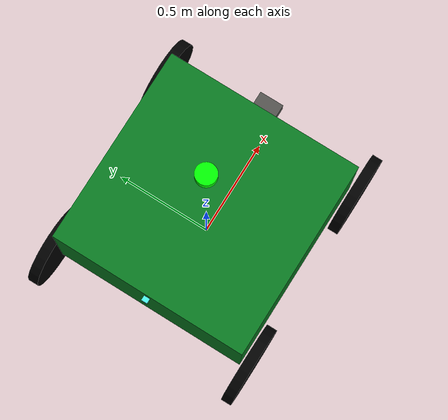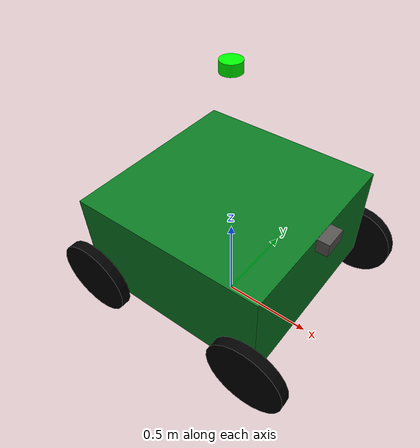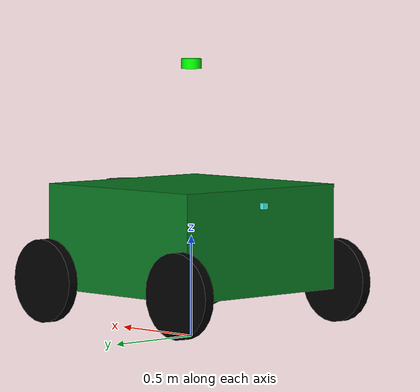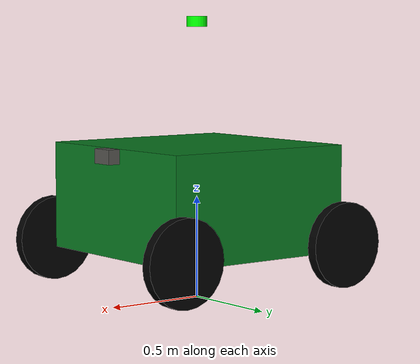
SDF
<?xml version="1.0"?>
<sdf version="1.8">
  <model name="Fun_Robot" canonical_link="base_footprint">
    <static>false</static>
    <pose>0 0 0 0 0 0</pose>

    <!-- Base footprint (frame only) -->
    <link name="base_footprint"/>

    <!-- Base link -->
    <link name="base_link">
      <pose relative_to="base_footprint">0 0 0.5 0 0 0</pose>

      <visual name="base_link_visual">
        <pose>0 0 0 0 0 0</pose>
        <geometry>
          <box>
            <!-- updated size (match provided text) -->
            <size>1 1 0.5232328098292442</size>
          </box>
        </geometry>
        <material>
          <ambient>0.033104766565152086 0.46778379610254284 0.12477181755144427 1</ambient>
          <diffuse>0.033104766565152086 0.46778379610254284 0.12477181755144427 1</diffuse>
          <specular>0.1 0.1 0.1 1</specular>
          <emissive>0 0 0 1</emissive>
        </material>
      </visual>

      <collision name="base_link_collision">
        <pose>0 0 0 0 0 0</pose>
        <geometry>
          <box>
            <size>1 1 0.5232328098292442</size>
          </box>
        </geometry>
      </collision>

      <inertial>
        <mass>1</mass>
        <inertia>
          <ixx>0.16666666666666666</ixx>
          <ixy>0</ixy>
          <ixz>0</ixz>
          <iyy>0.16666666666666666</iyy>
          <iyz>0</iyz>
          <izz>0.16666666666666666</izz>
        </inertia>
      </inertial>
    </link>

    <joint name="base_footprint_to_base_link" type="fixed">
      <pose relative_to="base_link">0 0 0 0 0 0</pose>
      <parent>base_footprint</parent>
      <child>base_link</child>
    </joint>

    <!-- LIDAR link + sensor (no ROS plugin; Gazebo Sim sensor only) -->
    <link name="lidar3d_link">
      <!-- position of the lidar on the robot -->
      <pose relative_to="base_link">0 0 0.8569669071788341 0 0 0</pose>

      <!-- small inertial so physics is happy -->
      <inertial>
        <mass>0.5</mass>
        <inertia>
          <ixx>0.001</ixx><ixy>0.0</ixy><ixz>0.0</ixz>
          <iyy>0.001</iyy><iyz>0.0</iyz>
          <izz>0.001</izz>
        </inertia>
      </inertial>

      <!-- simple collision + visual -->
      <collision name="collision">
        <geometry>
          <cylinder>
            <radius>0.05</radius>
            <length>0.05</length>
          </cylinder>
        </geometry>
      </collision>

      <visual name="visual">
        <geometry>
          <cylinder>
            <radius>0.05</radius>
            <length>0.05</length>
          </cylinder>
        </geometry>
        <material>
          <ambient>0.0 1.0 0.0 1</ambient>
          <diffuse>0.0 1.0 0.0 1</diffuse>
        </material>
      </visual>

      <!-- 3D GPU lidar sensor -->
      <sensor name="lidar3d" type="gpu_lidar">
        <pose>0 0 0 0 0 0</pose>
        <update_rate>10</update_rate>
        <always_on>true</always_on>

        <lidar>
          <scan>
            <horizontal>
              <samples>720</samples>
              <resolution>1</resolution>
              <min_angle>-3.14159</min_angle>
              <max_angle>3.14159</max_angle>
            </horizontal>
            <vertical>
              <samples>16</samples>
              <resolution>1</resolution>
              <min_angle>-0.523599</min_angle>
              <max_angle>0.523599</max_angle>
            </vertical>
          </scan>

          <range>
            <min>0.1</min>
            <max>20.0</max>
            <resolution>0.01</resolution>
          </range>
        </lidar>

        <!-- Gazebo topic it publishes; keep this exact name -->
        <topic>/lidar3d/points</topic>
      </sensor>
    </link>

    <joint name="base_link_to_lidar" type="fixed">
      <pose relative_to="lidar3d_link">0 0 0 0 0 0</pose>
      <parent>base_link</parent>
      <child>lidar3d_link</child>
    </joint>

    <!-- Right front wheel -->
    <link name="wheel_right">
      <!-- updated wheel_right pose (xyz and rpy) -->
      <pose relative_to="base_link">0.485 0.5371496664052635 -0.2208471930668996 1.5707963267948963 0 0</pose>

      <visual name="wheel_right_visual">
        <pose>0 0 0 0 0 0</pose>
        <geometry>
          <cylinder>
            <!-- updated wheel radius -->
            <radius>0.208</radius>
            <length>0.05383527298985801</length>
          </cylinder>
        </geometry>
        <material>
          <!-- updated wheel color to black -->
          <ambient>0 0 0 1</ambient>
          <diffuse>0 0 0 1</diffuse>
          <specular>0.1 0.1 0.1 1</specular>
          <emissive>0 0 0 1</emissive>
        </material>
      </visual>

      <collision name="wheel_right_collision">
        <pose>0 0 0 0 0 0</pose>
        <geometry>
          <cylinder>
            <!-- updated collision radius -->
            <radius>0.208</radius>
            <length>0.05383527298985801</length>
          </cylinder>
        </geometry>
      </collision>

      <inertial>
        <mass>1</mass>
        <inertia>
          <ixx>0.3333333333333333</ixx>
          <ixy>0</ixy>
          <ixz>0</ixz>
          <iyy>0.5</iyy>
          <iyz>0</iyz>
          <izz>0.3333333333333333</izz>
        </inertia>
      </inertial>
    </link>

    <joint name="base_link_to_wheel_right" type="revolute">
      <pose relative_to="wheel_right">0 0 0 0 0 0</pose>
      <parent>base_link</parent>
      <child>wheel_right</child>
      <axis>
        <xyz expressed_in="wheel_right">0 0 -1</xyz>
      </axis>
    </joint>

    <!-- Left front wheel -->
    <link name="wheel_left">
      <!-- updated wheel_left pose -->
      <pose relative_to="base_link">0.485 -0.54 -0.2208471930668996 1.5707963267948963 0 0</pose>

      <visual name="wheel_left_visual">
        <pose>0 0 0 0 0 0</pose>
        <geometry>
          <cylinder>
            <!-- updated radius -->
            <radius>0.208</radius>
            <length>0.05383527298985801</length>
          </cylinder>
        </geometry>
        <material>
          <!-- black wheels -->
          <ambient>0 0 0 1</ambient>
          <diffuse>0 0 0 1</diffuse>
          <specular>0.1 0.1 0.1 1</specular>
          <emissive>0 0 0 1</emissive>
        </material>
      </visual>

      <collision name="wheel_left_collision">
        <pose>0 0 0 0 0 0</pose>
        <geometry>
          <cylinder>
            <radius>0.208</radius>
            <length>0.05383527298985801</length>
          </cylinder>
        </geometry>
      </collision>

      <inertial>
        <mass>1</mass>
        <inertia>
          <ixx>0.3333333333333333</ixx>
          <ixy>0</ixy>
          <ixz>0</ixz>
          <iyy>0.5</iyy>
          <iyz>0</iyz>
          <izz>0.3333333333333333</izz>
        </inertia>
      </inertial>
    </link>

    <joint name="base_link_to_wheel_left" type="revolute">
      <pose relative_to="wheel_left">0 0 0 0 0 0</pose>
      <parent>base_link</parent>
      <child>wheel_left</child>
      <axis>
        <xyz expressed_in="wheel_left">0 0 -1</xyz>
      </axis>
    </joint>

    <!-- Camera link + sensor (no ROS plugin; Gazebo Sim sensor only) -->
    <!-- Camera physical link (mount), no sensors here -->
    <link name="camera">
      <!-- DO NOT set pose relative_to base_link here when you use a joint -->
      <pose relative_to="base_link">0.5271311279373819 0 0.22501975181348832 0 0 0</pose>
      <visual name="camera_visual">
        <pose>0 0 0 0 0 0</pose>
        <geometry>
          <box>
            <size>0.07 0.12 0.07</size>
          </box>
        </geometry>
        <material>
          <ambient>0.3231432091022285 0.31854677811435356 0.3049873140591091 1</ambient>
          <diffuse>0.3231432091022285 0.31854677811435356 0.3049873140591091 1</diffuse>
          <specular>0.1 0.1 0.1 1</specular>
          <emissive>0 0 0 1</emissive>
        </material>
      </visual>

      <collision name="camera_collision">
        <pose>0 0 0 0 0 0</pose>
        <geometry>
          <box>
            <size>0.07 0.12 0.07</size>
          </box>
        </geometry>
      </collision>

      <inertial>
        <mass>1</mass>
        <inertia>
          <ixx>0.16666666666666666</ixx>
          <ixy>0</ixy>
          <ixz>0</ixz>
          <iyy>0.16666666666666666</iyy>
          <iyz>0</iyz>
          <izz>0.16666666666666666</izz>
        </inertia>
      </inertial>
    </link>

    <!-- Optical frame link (ROS optical convention: Z forward, X right, Y down) -->
    <link name="camera_optical">
      <pose relative_to="camera">0 0 0 0 0 0</pose>

      <!-- make it effectively massless and non-colliding -->
      <inertial>
        <mass>0.001</mass>
        <inertia>
          <ixx>1e-6</ixx> <ixy>0</ixy> <ixz>0</ixz>
          <iyy>1e-6</iyy> <iyz>0</iyz>
          <izz>1e-6</izz>
        </inertia>
      </inertial>

      <!-- Color camera sensor on the optical frame -->
      <sensor name="camera_front_camera" type="camera">
        <always_on>true</always_on>
        <visualize>true</visualize>
        <update_rate>10</update_rate>

        <!-- Pin the topic so your existing bridges can stay the same -->
        <topic>/world/world_demo/model/diff_robot/link/camera/sensor/camera_front_camera/image</topic>

        <camera name="camera_camera">
          <horizontal_fov>1.3962634</horizontal_fov>
          <image>
            <width>640</width>
            <height>480</height>
            <format>R8G8B8</format>
          </image>
          <clip>
            <near>0.1</near>
            <far>100</far>
          </clip>
          <noise>
            <type>gaussian</type>
            <mean>0.01</mean>
            <stddev>0.007</stddev>
          </noise>
        </camera>
      </sensor>

      <!-- Depth sensor co-located with the color camera (RGB-D) -->
      <sensor name="camera_front_camera_depth" type="depth">
        <always_on>true</always_on>
        <visualize>false</visualize>
        <update_rate>10</update_rate>

        <!-- keep the exact topic you already bridge -->
        <topic>/world/world_demo/model/diff_robot/link/camera/sensor/camera_front_camera/depth_image</topic>

        <camera>
          <horizontal_fov>1.3962634</horizontal_fov>
          <image>
            <width>640</width>
            <height>480</height>
            <format>R_FLOAT32</format>
          </image>
          <clip>
            <near>0.1</near>
            <far>100</far>
          </clip>
        </camera>
      </sensor>
    </link>

    <!-- base_link -> camera mount (this is your camera position) -->
<!-- Joint poses are zero; links already carry the mounting pose -->
    <joint name="base_link_to_camera" type="fixed">
      <parent>base_link</parent>
      <child>camera</child>
      <pose>0 0 0 0 0 0</pose>
    </joint>

    <joint name="camera_to_camera_optical" type="fixed">
      <parent>camera</parent>
      <child>camera_optical</child>
      <pose>0 0 0 0 0 0</pose>
    </joint>

    <!-- IMU link + sensor (no ROS plugin; Gazebo Sim sensor only) -->
    <link name="imu_sensor">
      <!-- updated IMU link pose (y set to 0) -->
      <pose relative_to="base_link">-0.51 0 0.17904669409114127 0 0 0</pose>

      <visual name="imu_sensor_visual">
        <pose>0 0 0 0 0 0</pose>
        <geometry>
          <box>
            <!-- updated IMU size -->
            <size>0.03 0.03 0.03</size>
          </box>
        </geometry>
        <material>
          <ambient>0.2874408377161099 0.9559733532482866 0.913098651791473 1</ambient>
          <diffuse>0.2874408377161099 0.9559733532482866 0.913098651791473 1</diffuse>
          <specular>0.1 0.1 0.1 1</specular>
          <emissive>0 0 0 1</emissive>
        </material>
      </visual>

      <collision name="imu_sensor_collision">
        <pose>0 0 0 0 0 0</pose>
        <geometry>
          <box>
            <size>0.03 0.03 0.03</size>
          </box>
        </geometry>
      </collision>

      <inertial>
        <mass>1</mass>
        <inertia>
          <ixx>0.16666666666666666</ixx>
          <ixy>0</ixy>
          <ixz>0</ixz>
          <iyy>0.16666666666666666</iyy>
          <iyz>0</iyz>
          <izz>0.16666666666666666</izz>
        </inertia>
      </inertial>

      <sensor name="imu" type="imu">
        <always_on>true</always_on>
        <update_rate>100</update_rate>
        <imu>
          <angular_velocity>
            <x>
              <noise type="gaussian">
                <mean>0</mean>
                <stddev>0</stddev>
              </noise>
            </x>
            <y>
              <noise type="gaussian">
                <mean>0</mean>
                <stddev>0</stddev>
              </noise>
            </y>
            <z>
              <noise type="gaussian">
                <mean>0</mean>
                <stddev>0</stddev>
              </noise>
            </z>
          </angular_velocity>
          <linear_acceleration>
            <x>
              <noise type="gaussian">
                <mean>0</mean>
                <stddev>0</stddev>
              </noise>
            </x>
            <y>
              <noise type="gaussian">
                <mean>0</mean>
                <stddev>0</stddev>
              </noise>
            </y>
            <z>
              <noise type="gaussian">
                <mean>0</mean>
                <stddev>0</stddev>
              </noise>
            </z>
          </linear_acceleration>
        </imu>
      </sensor>
    </link>

    <joint name="base_link_to_imu_sensor" type="fixed">
      <pose relative_to="imu_sensor">0 0 0 0 0 0</pose>
      <parent>base_link</parent>
      <child>imu_sensor</child>
    </joint>

    <!-- Left rear wheel -->
    <link name="wheel_left1">
      <!-- updated left rear wheel pose -->
      <pose relative_to="base_link">-0.48 -0.54 -0.2208471930668996 1.5707963267948963 0 0</pose>

      <visual name="wheel_left1_visual">
        <pose>0 0 0 0 0 0</pose>
        <geometry>
          <cylinder>
            <!-- updated radius -->
            <radius>0.208</radius>
            <length>0.05383527298985801</length>
          </cylinder>
        </geometry>
        <material>
          <ambient>0 0 0 1</ambient>
          <diffuse>0 0 0 1</diffuse>
          <specular>0.1 0.1 0.1 1</specular>
          <emissive>0 0 0 1</emissive>
        </material>
      </visual>

      <collision name="wheel_left1_collision">
        <pose>0 0 0 0 0 0</pose>
        <geometry>
          <cylinder>
            <radius>0.208</radius>
            <length>0.05383527298985801</length>
          </cylinder>
        </geometry>
      </collision>

      <inertial>
        <mass>1</mass>
        <inertia>
          <ixx>0.3333333333333333</ixx>
          <ixy>0</ixy>
          <ixz>0</ixz>
          <iyy>0.5</iyy>
          <iyz>0</iyz>
          <izz>0.3333333333333333</izz>
        </inertia>
      </inertial>
    </link>

    <joint name="base_link_to_wheel_left1" type="revolute">
      <pose relative_to="wheel_left1">0 0 0 0 0 0</pose>
      <parent>base_link</parent>
      <child>wheel_left1</child>
      <axis>
        <xyz expressed_in="wheel_left1">0 0 -1</xyz>
      </axis>
    </joint>

    <!-- Right rear wheel -->
    <link name="wheel_right1">
      <!-- updated right rear wheel pose -->
      <pose relative_to="base_link">-0.485 0.5371496664052635 -0.2208471930668996 1.5707963267948963 0 0</pose>

      <visual name="wheel_right1_visual">
        <pose>0 0 0 0 0 0</pose>
        <geometry>
          <cylinder>
            <radius>0.208</radius>
            <length>0.05383527298985801</length>
          </cylinder>
        </geometry>
        <material>
          <ambient>0 0 0 1</ambient>
          <diffuse>0 0 0 1</diffuse>
          <specular>0.1 0.1 0.1 1</specular>
          <emissive>0 0 0 1</emissive>
        </material>
      </visual>

      <collision name="wheel_right1_collision">
        <pose>0 0 0 0 0 0</pose>
        <geometry>
          <cylinder>
            <radius>0.208</radius>
            <length>0.05383527298985801</length>
          </cylinder>
        </geometry>
      </collision>

      <inertial>
        <mass>1</mass>
        <inertia>
          <ixx>0.3333333333333333</ixx>
          <ixy>0</ixy>
          <ixz>0</ixz>
          <iyy>0.5</iyy>
          <iyz>0</iyz>
          <izz>0.3333333333333333</izz>
        </inertia>
      </inertial>
    </link>

    <joint name="base_link_to_wheel_right1" type="revolute">
      <pose relative_to="wheel_right1">0 0 0 0 0 0</pose>
      <parent>base_link</parent>
      <child>wheel_right1</child>
      <axis>
        <xyz expressed_in="wheel_right1">0 0 -1</xyz>
      </axis>
    </joint>

    <!-- Differential Drive Plugin -->
    <plugin
        filename="libignition-gazebo-diff-drive-system.so"
        name="ignition::gazebo::systems::DiffDrive">
      <left_joint>base_link_to_wheel_left</left_joint>
      <right_joint>base_link_to_wheel_right</right_joint>
      <left_joint>base_link_to_wheel_left1</left_joint>
      <right_joint>base_link_to_wheel_right1</right_joint>
      <wheel_separation>1.1</wheel_separation>
      <!-- updated wheel radius to match changed wheels -->
      <wheel_radius>0.208</wheel_radius>
      <odom_publish_frequency>50</odom_publish_frequency>
      <topic>/cmd_vel</topic>
      <odom_topic>/odom</odom_topic>
      <tf_topic>/tf</tf_topic>
      <frame_id>odom</frame_id>
      <child_frame_id>base_footprint</child_frame_id>
    </plugin>

    <!-- Gazebo Sim joint state publisher system plugin (Fortress) -->
    <plugin name="ignition::gazebo::systems::JointStatePublisher"
            filename="libignition-gazebo-joint-state-publisher-system.so">
      <joint_name>base_link_to_wheel_right</joint_name>
      <joint_name>base_link_to_wheel_left</joint_name>
      <joint_name>base_link_to_wheel_left1</joint_name>
      <joint_name>base_link_to_wheel_right1</joint_name>
    </plugin>

    <!-- 3D LIDAR link + sensor (no ROS plugin; Gazebo Sim sensor only) -->

  </model>
</sdf>
